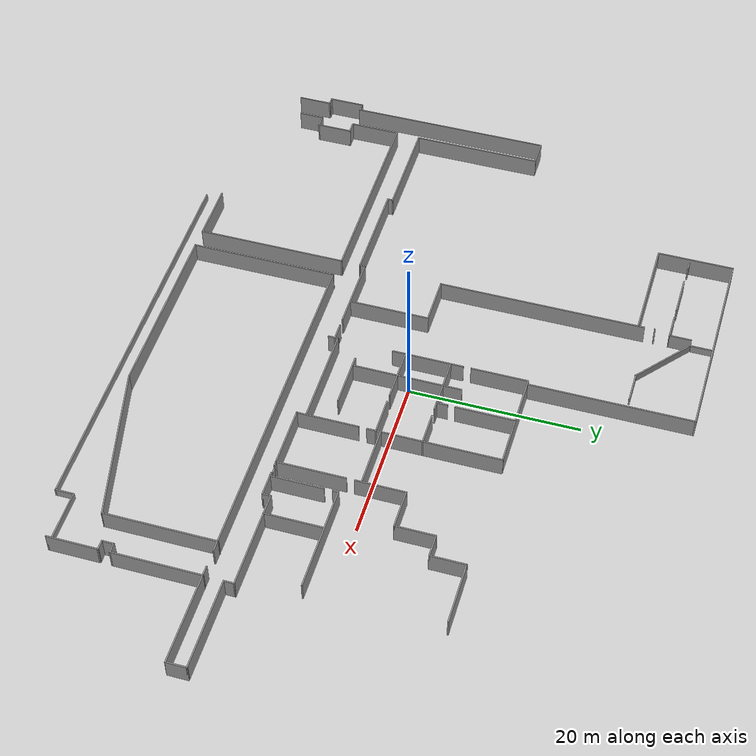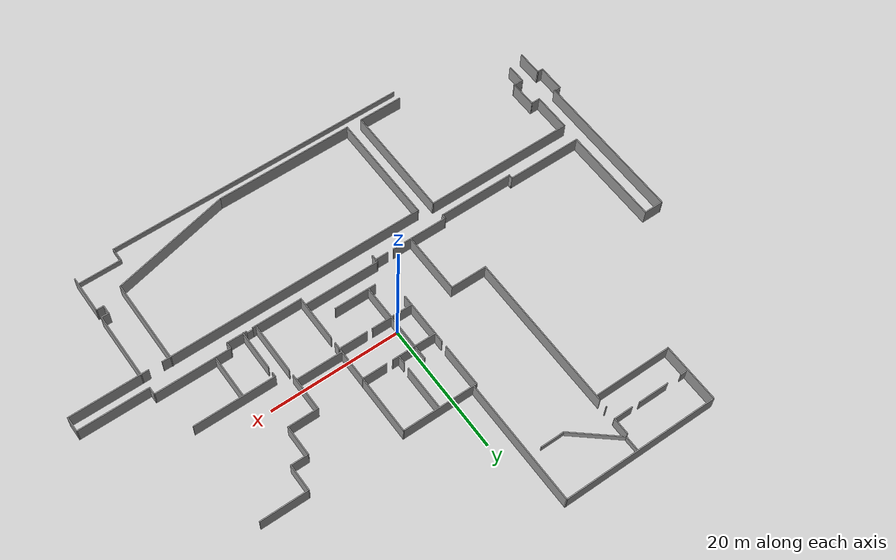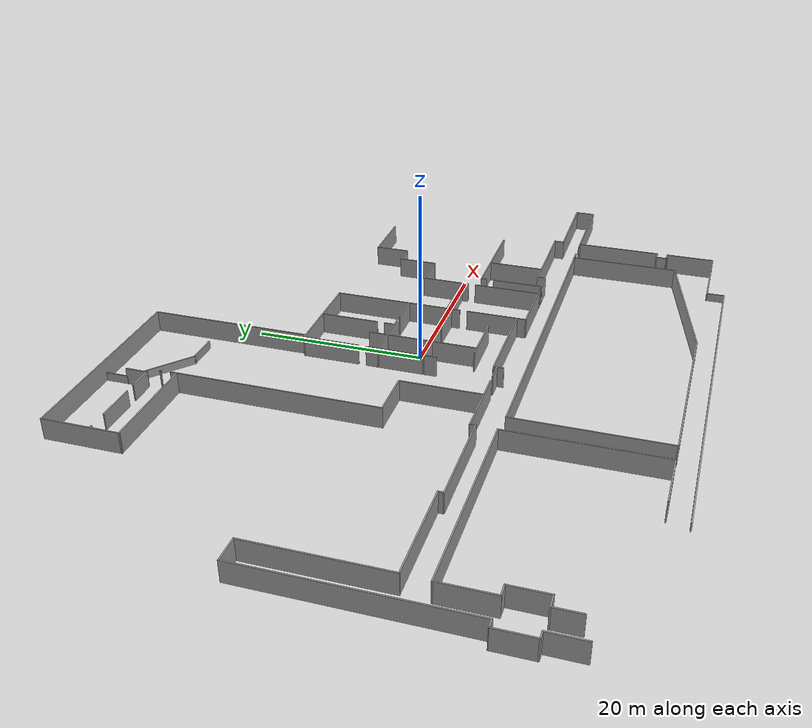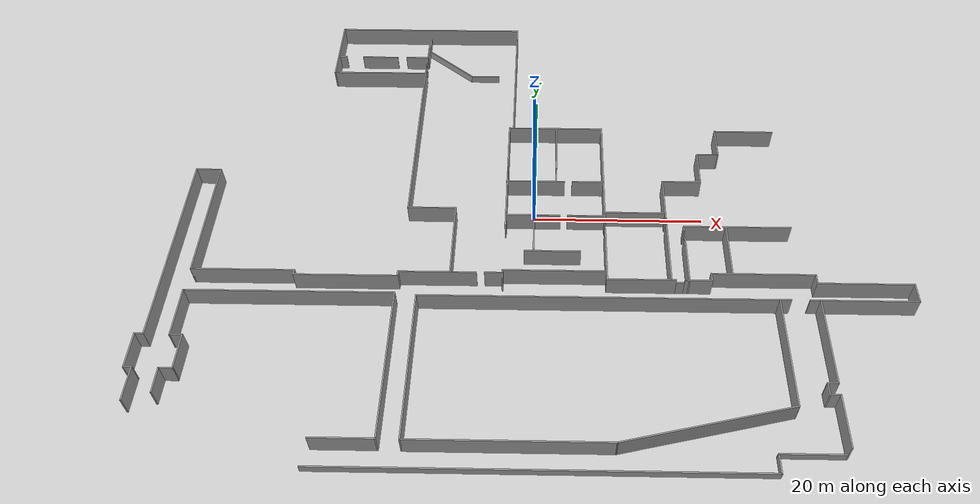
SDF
<sdf version="1.6">
 <model name="uia_2nd_floor">
  <pose>0.014578 -0.252924 0 0 -0 0</pose>
  <link name="Door_8">
   <collision name="Door_8_Collision">
    <geometry><box><size>0.9 0.17 2</size></box></geometry>
    <pose>0 0 1 0 -0 0</pose>
   </collision>
   <visual name="Door_8_Visual">
    <pose>0 0 1 0 -0 0</pose>
    <geometry><box><size>0.9 0.17 2</size></box></geometry>
    <material>
     <script><uri>file://media/materials/scripts/gazebo.material</uri><name>Gazebo/Grey</name></script>
    </material>
   </visual>
   <pose>16.387 -10.3215 0 0 -0 0</pose>
  </link>
  <link name="Wall_1">
   <collision name="Wall_1_Collision">
    <geometry><box><size>24.5 0.15 2.5</size></box></geometry>
    <pose>0 0 1.25 0 -0 0</pose>
   </collision>
   <visual name="Wall_1_Visual">
    <pose>0 0 1.25 0 -0 0</pose>
    <geometry><box><size>24.5 0.15 2.5</size></box></geometry>
    <material>
     <script><uri>file://media/materials/scripts/gazebo.material</uri><name>Gazebo/Grey</name></script>
     <ambient>1 1 1 1</ambient>
    </material>
    <meta><layer>0</layer></meta>
   </visual>
   <pose>-14.8598 12.0178 0 0 -0 -1.5708</pose>
  </link>
  <link name="Wall_100">
   <collision name="Wall_100_Collision">
    <geometry><box><size>10.5 0.15 2.5</size></box></geometry>
    <pose>0 0 1.25 0 -0 0</pose>
   </collision>
   <visual name="Wall_100_Visual">
    <pose>0 0 1.25 0 -0 0</pose>
    <geometry><box><size>10.5 0.15 2.5</size></box></geometry>
    <material>
     <script><uri>file://media/materials/scripts/gazebo.material</uri><name>Gazebo/Grey</name></script>
     <ambient>1 1 1 1</ambient>
    </material>
    <meta><layer>0</layer></meta>
   </visual>
   <pose>31.4237 -17.9685 0 0 -0 -1.5708</pose>
  </link>
  <link name="Wall_101">
   <collision name="Wall_101_Collision">
    <geometry><box><size>1.25 0.15 2.5</size></box></geometry>
    <pose>0 0 1.25 0 -0 0</pose>
   </collision>
   <visual name="Wall_101_Visual">
    <pose>0 0 1.25 0 -0 0</pose>
    <geometry><box><size>1.25 0.15 2.5</size></box></geometry>
    <material>
     <script><uri>file://media/materials/scripts/gazebo.material</uri><name>Gazebo/Grey</name></script>
     <ambient>1 1 1 1</ambient>
    </material>
    <meta><layer>0</layer></meta>
   </visual>
   <pose>30.8737 -23.1435 0 0 -0 3.14159</pose>
  </link>
  <link name="Wall_102">
   <collision name="Wall_102_Collision">
    <geometry><box><size>1.5 0.15 2.5</size></box></geometry>
    <pose>0 0 1.25 0 -0 0</pose>
   </collision>
   <visual name="Wall_102_Visual">
    <pose>0 0 1.25 0 -0 0</pose>
    <geometry><box><size>1.5 0.15 2.5</size></box></geometry>
    <material>
     <script><uri>file://media/materials/scripts/gazebo.material</uri><name>Gazebo/Grey</name></script>
     <ambient>1 1 1 1</ambient>
    </material>
    <meta><layer>0</layer></meta>
   </visual>
   <pose>30.3237 -23.8185 0 0 -0 -1.5708</pose>
  </link>
  <link name="Wall_103">
   <collision name="Wall_103_Collision">
    <geometry><box><size>1.25 0.15 2.5</size></box></geometry>
    <pose>0 0 1.25 0 -0 0</pose>
   </collision>
   <visual name="Wall_103_Visual">
    <pose>0 0 1.25 0 -0 0</pose>
    <geometry><box><size>1.25 0.15 2.5</size></box></geometry>
    <material>
     <script><uri>file://media/materials/scripts/gazebo.material</uri><name>Gazebo/Grey</name></script>
     <ambient>1 1 1 1</ambient>
    </material>
    <meta><layer>0</layer></meta>
   </visual>
   <pose>30.8737 -24.4935 0 0 -0 0</pose>
  </link>
  <link name="Wall_104">
   <collision name="Wall_104_Collision">
    <geometry><box><size>6 0.15 2.5</size></box></geometry>
    <pose>0 0 1.25 0 -0 0</pose>
   </collision>
   <visual name="Wall_104_Visual">
    <pose>0 0 1.25 0 -0 0</pose>
    <geometry><box><size>6 0.15 2.5</size></box></geometry>
    <material>
     <script><uri>file://media/materials/scripts/gazebo.material</uri><name>Gazebo/Grey</name></script>
     <ambient>1 1 1 1</ambient>
    </material>
    <meta><layer>0</layer></meta>
   </visual>
   <pose>31.4235 -27.4183 0 0 -0 -1.57084</pose>
  </link>
  <link name="Wall_106">
   <collision name="Wall_106_Collision">
    <geometry><box><size>7 0.15 1</size></box></geometry>
    <pose>0 0 0.5 0 -0 0</pose>
   </collision>
   <visual name="Wall_106_Visual">
    <pose>0 0 0.5 0 -0 0</pose>
    <geometry><box><size>7 0.15 1</size></box></geometry>
    <material>
     <script><uri>file://media/materials/scripts/gazebo.material</uri><name>Gazebo/Grey</name></script>
     <ambient>1 1 1 1</ambient>
    </material>
    <meta><layer>0</layer></meta>
   </visual>
   <pose>27.9984 -30.3431 0 0 -0 3.14159</pose>
  </link>
  <link name="Wall_108">
   <collision name="Wall_108_Collision">
    <geometry><box><size>2.25 0.15 1</size></box></geometry>
    <pose>0 0 0.5 0 -0 0</pose>
   </collision>
   <visual name="Wall_108_Visual">
    <pose>0 0 0.5 0 -0 0</pose>
    <geometry><box><size>2.25 0.15 1</size></box></geometry>
    <material>
     <script><uri>file://media/materials/scripts/gazebo.material</uri><name>Gazebo/Grey</name></script>
     <ambient>1 1 1 1</ambient>
    </material>
    <meta><layer>0</layer></meta>
   </visual>
   <pose>24.5734 -31.3931 0 0 -0 -1.5708</pose>
  </link>
  <link name="Wall_11">
   <collision name="Wall_11_Collision">
    <geometry><box><size>1 0.15 2</size></box></geometry>
    <pose>0 0 1 0 -0 0</pose>
   </collision>
   <visual name="Wall_11_Visual">
    <pose>0 0 1 0 -0 0</pose>
    <geometry><box><size>1 0.15 2</size></box></geometry>
    <material>
     <script><uri>file://media/materials/scripts/gazebo.material</uri><name>Gazebo/Grey</name></script>
     <ambient>1 1 1 1</ambient>
    </material>
    <meta><layer>0</layer></meta>
   </visual>
   <pose>-26.4416 27.2929 0 0 -0 3.14159</pose>
  </link>
  <link name="Wall_112">
   <collision name="Wall_112_Collision">
    <geometry><box><size>21.4992 0.15 2.5</size></box></geometry>
    <pose>0 0 1.25 0 -0 0</pose>
   </collision>
   <visual name="Wall_112_Visual">
    <pose>0 0 1.25 0 -0 0</pose>
    <geometry><box><size>21.4992 0.15 2.5</size></box></geometry>
    <material>
     <script><uri>file://media/materials/scripts/gazebo.material</uri><name>Gazebo/Grey</name></script>
     <ambient>1 1 1 1</ambient>
    </material>
    <meta><layer>0</layer></meta>
   </visual>
   <pose>-2.08908 -30.1571 0 0 -0 0</pose>
  </link>
  <link name="Wall_114">
   <collision name="Wall_114_Collision">
    <geometry><box><size>19.0467 0.15 2.5</size></box></geometry>
    <pose>0 0 1.25 0 -0 0</pose>
   </collision>
   <visual name="Wall_114_Visual">
    <pose>0 0 1.25 0 -0 0</pose>
    <geometry><box><size>19.0467 0.15 2.5</size></box></geometry>
    <material>
     <script><uri>file://media/materials/scripts/gazebo.material</uri><name>Gazebo/Grey</name></script>
     <ambient>1 1 1 1</ambient>
    </material>
    <meta><layer>0</layer></meta>
   </visual>
   <pose>17.7868 -28.01 0 0 -0 0.22924</pose>
  </link>
  <link name="Wall_116">
   <collision name="Wall_116_Collision">
    <geometry><box><size>17.5 0.15 2.5</size></box></geometry>
    <pose>0 0 1.25 0 -0 0</pose>
   </collision>
   <visual name="Wall_116_Visual">
    <pose>0 0 1.25 0 -0 0</pose>
    <geometry><box><size>17.5 0.15 2.5</size></box></geometry>
    <material>
     <script><uri>file://media/materials/scripts/gazebo.material</uri><name>Gazebo/Grey</name></script>
     <ambient>1 1 1 1</ambient>
    </material>
    <meta><layer>0</layer></meta>
   </visual>
   <pose>-12.7636 -21.4821 0 0 -0 1.5708</pose>
  </link>
  <link name="Wall_118">
   <collision name="Wall_118_Collision">
    <geometry><box><size>17.75 0.15 2.5</size></box></geometry>
    <pose>0 0 1.25 0 -0 0</pose>
   </collision>
   <visual name="Wall_118_Visual">
    <pose>0 0 1.25 0 -0 0</pose>
    <geometry><box><size>17.75 0.15 2.5</size></box></geometry>
    <material>
     <script><uri>file://media/materials/scripts/gazebo.material</uri><name>Gazebo/Grey</name></script>
     <ambient>1 1 1 1</ambient>
    </material>
    <meta><layer>0</layer></meta>
   </visual>
   <pose>-15.1487 -21.3153 0 0 -0 1.57081</pose>
  </link>
  <link name="Wall_119">
   <collision name="Wall_119_Collision">
    <geometry><box><size>23.4 0.15 2.5</size></box></geometry>
    <pose>0 0 1.25 0 -0 0</pose>
   </collision>
   <visual name="Wall_119_Visual">
    <pose>0 0 1.25 0 -0 0</pose>
    <geometry><box><size>23.4 0.15 2.5</size></box></geometry>
    <material>
     <script><uri>file://media/materials/scripts/gazebo.material</uri><name>Gazebo/Grey</name></script>
     <ambient>1 1 1 1</ambient>
    </material>
    <meta><layer>0</layer></meta>
   </visual>
   <pose>-26.7737 -12.5155 0 0 -0 3.14159</pose>
  </link>
  <link name="Wall_121">
   <collision name="Wall_121_Collision">
    <geometry><box><size>6.88066 0.15 2.5</size></box></geometry>
    <pose>0 0 1.25 0 -0 0</pose>
   </collision>
   <visual name="Wall_121_Visual">
    <pose>0 0 1.25 0 -0 0</pose>
    <geometry><box><size>6.88066 0.15 2.5</size></box></geometry>
    <material>
     <script><uri>file://media/materials/scripts/gazebo.material</uri><name>Gazebo/Grey</name></script>
     <ambient>1 1 1 1</ambient>
    </material>
    <meta><layer>0</layer></meta>
   </visual>
   <pose>-18.5141 -30.1151 0 0 -0 0</pose>
  </link>
  <link name="Wall_123">
   <collision name="Wall_123_Collision">
    <geometry><box><size>47.2393 0.15 1</size></box></geometry>
    <pose>0 0 0.5 0 -0 0</pose>
   </collision>
   <visual name="Wall_123_Visual">
    <pose>0 0 0.5 0 -0 0</pose>
    <geometry><box><size>47.2393 0.15 1</size></box></geometry>
    <material>
     <script><uri>file://media/materials/scripts/gazebo.material</uri><name>Gazebo/Grey</name></script>
     <ambient>1 1 1 1</ambient>
    </material>
    <meta><layer>0</layer></meta>
   </visual>
   <pose>1.02892 -32.4431 0 0 -0 0</pose>
  </link>
  <link name="Wall_125">
   <collision name="Wall_125_Collision">
    <geometry><box><size>6 0.15 2.5</size></box></geometry>
    <pose>0 0 1.25 0 -0 0</pose>
   </collision>
   <visual name="Wall_125_Visual">
    <pose>0 0 1.25 0 -0 0</pose>
    <geometry><box><size>6 0.15 2.5</size></box></geometry>
    <material>
     <script><uri>file://media/materials/scripts/gazebo.material</uri><name>Gazebo/Grey</name></script>
     <ambient>1 1 1 1</ambient>
    </material>
    <meta><layer>0</layer></meta>
   </visual>
   <pose>-38.3987 -15.4405 0 0 -0 -1.5708</pose>
  </link>
  <link name="Wall_126">
   <collision name="Wall_126_Collision">
    <geometry><box><size>1.5 0.15 2.5</size></box></geometry>
    <pose>0 0 1.25 0 -0 0</pose>
   </collision>
   <visual name="Wall_126_Visual">
    <pose>0 0 1.25 0 -0 0</pose>
    <geometry><box><size>1.5 0.15 2.5</size></box></geometry>
    <material>
     <script><uri>file://media/materials/scripts/gazebo.material</uri><name>Gazebo/Grey</name></script>
     <ambient>1 1 1 1</ambient>
    </material>
    <meta><layer>0</layer></meta>
   </visual>
   <pose>-37.7237 -18.3655 0 0 -0 0</pose>
  </link>
  <link name="Wall_128">
   <collision name="Wall_128_Collision">
    <geometry><box><size>4.25 0.15 2.5</size></box></geometry>
    <pose>0 0 1.25 0 -0 0</pose>
   </collision>
   <visual name="Wall_128_Visual">
    <pose>0 0 1.25 0 -0 0</pose>
    <geometry><box><size>4.25 0.15 2.5</size></box></geometry>
    <material>
     <script><uri>file://media/materials/scripts/gazebo.material</uri><name>Gazebo/Grey</name></script>
     <ambient>1 1 1 1</ambient>
    </material>
    <meta><layer>0</layer></meta>
   </visual>
   <pose>-37.0487 -20.4155 0 0 -0 -1.5708</pose>
  </link>
  <link name="Wall_129">
   <collision name="Wall_129_Collision">
    <geometry><box><size>1.6 0.15 2.5</size></box></geometry>
    <pose>0 0 1.25 0 -0 0</pose>
   </collision>
   <visual name="Wall_129_Visual">
    <pose>0 0 1.25 0 -0 0</pose>
    <geometry><box><size>1.6 0.15 2.5</size></box></geometry>
    <material>
     <script><uri>file://media/materials/scripts/gazebo.material</uri><name>Gazebo/Grey</name></script>
     <ambient>1 1 1 1</ambient>
    </material>
    <meta><layer>0</layer></meta>
   </visual>
   <pose>-37.7737 -22.4655 0 0 -0 3.14159</pose>
  </link>
  <link name="Wall_13">
   <collision name="Wall_13_Collision">
    <geometry><box><size>4.75 0.15 2</size></box></geometry>
    <pose>0 0 1 0 -0 0</pose>
   </collision>
   <visual name="Wall_13_Visual">
    <pose>0 0 1 0 -0 0</pose>
    <geometry><box><size>4.75 0.15 2</size></box></geometry>
    <material>
     <script><uri>file://media/materials/scripts/gazebo.material</uri><name>Gazebo/Grey</name></script>
     <ambient>1 1 1 1</ambient>
    </material>
    <meta><layer>0</layer></meta>
   </visual>
   <pose>-21.3616 27.2469 0 0 -0 3.14159</pose>
  </link>
  <link name="Wall_131">
   <collision name="Wall_131_Collision">
    <geometry><box><size>3 0.15 2.5</size></box></geometry>
    <pose>0 0 1.25 0 -0 0</pose>
   </collision>
   <visual name="Wall_131_Visual">
    <pose>0 0 1.25 0 -0 0</pose>
    <geometry><box><size>3 0.15 2.5</size></box></geometry>
    <material>
     <script><uri>file://media/materials/scripts/gazebo.material</uri><name>Gazebo/Grey</name></script>
     <ambient>1 1 1 1</ambient>
    </material>
    <meta><layer>0</layer></meta>
   </visual>
   <pose>-38.4987 -23.8905 0 0 -0 -1.5708</pose>
  </link>
  <link name="Wall_133">
   <collision name="Wall_133_Collision">
    <geometry><box><size>4 0.15 2.5</size></box></geometry>
    <pose>0 0 1.25 0 -0 0</pose>
   </collision>
   <visual name="Wall_133_Visual">
    <pose>0 0 1.25 0 -0 0</pose>
    <geometry><box><size>4 0.15 2.5</size></box></geometry>
    <material>
     <script><uri>file://media/materials/scripts/gazebo.material</uri><name>Gazebo/Grey</name></script>
     <ambient>1 1 1 1</ambient>
    </material>
    <meta><layer>0</layer></meta>
   </visual>
   <pose>-41.3174 -24.3275 0 0 -0 1.5708</pose>
  </link>
  <link name="Wall_134">
   <collision name="Wall_134_Collision">
    <geometry><box><size>1 0.15 2.5</size></box></geometry>
    <pose>0 0 1.25 0 -0 0</pose>
   </collision>
   <visual name="Wall_134_Visual">
    <pose>0 0 1.25 0 -0 0</pose>
    <geometry><box><size>1 0.15 2.5</size></box></geometry>
    <material>
     <script><uri>file://media/materials/scripts/gazebo.material</uri><name>Gazebo/Grey</name></script>
     <ambient>1 1 1 1</ambient>
    </material>
    <meta><layer>0</layer></meta>
   </visual>
   <pose>-41.7424 -22.4025 0 0 -0 3.14159</pose>
  </link>
  <link name="Wall_135">
   <collision name="Wall_135_Collision">
    <geometry><box><size>4.25 0.15 2.5</size></box></geometry>
    <pose>0 0 1.25 0 -0 0</pose>
   </collision>
   <visual name="Wall_135_Visual">
    <pose>0 0 1.25 0 -0 0</pose>
    <geometry><box><size>4.25 0.15 2.5</size></box></geometry>
    <material>
     <script><uri>file://media/materials/scripts/gazebo.material</uri><name>Gazebo/Grey</name></script>
     <ambient>1 1 1 1</ambient>
    </material>
    <meta><layer>0</layer></meta>
   </visual>
   <pose>-42.1674 -20.3525 0 0 -0 1.5708</pose>
  </link>
  <link name="Wall_136">
   <collision name="Wall_136_Collision">
    <geometry><box><size>1.10281 0.15 2.5</size></box></geometry>
    <pose>0 0 1.25 0 -0 0</pose>
   </collision>
   <visual name="Wall_136_Visual">
    <pose>0 0 1.25 0 -0 0</pose>
    <geometry><box><size>1.10281 0.15 2.5</size></box></geometry>
    <material>
     <script><uri>file://media/materials/scripts/gazebo.material</uri><name>Gazebo/Grey</name></script>
     <ambient>1 1 1 1</ambient>
    </material>
    <meta><layer>0</layer></meta>
   </visual>
   <pose>-41.691 -18.3023 0 0 -0 0.000416</pose>
  </link>
  <link name="Wall_138">
   <collision name="Wall_138_Collision">
    <geometry><box><size>24 0.15 2.5</size></box></geometry>
    <pose>0 0 1.25 0 -0 0</pose>
   </collision>
   <visual name="Wall_138_Visual">
    <pose>0 0 1.25 0 -0 0</pose>
    <geometry><box><size>24 0.15 2.5</size></box></geometry>
    <material>
     <script><uri>file://media/materials/scripts/gazebo.material</uri><name>Gazebo/Grey</name></script>
     <ambient>1 1 1 1</ambient>
    </material>
    <meta><layer>0</layer></meta>
   </visual>
   <pose>-41.2146 -6.37708 0 0 -0 1.5708</pose>
  </link>
  <link name="Wall_140">
   <collision name="Wall_140_Collision">
    <geometry><box><size>3.1 0.15 2.5</size></box></geometry>
    <pose>0 0 1.25 0 -0 0</pose>
   </collision>
   <visual name="Wall_140_Visual">
    <pose>0 0 1.25 0 -0 0</pose>
    <geometry><box><size>3.1 0.15 2.5</size></box></geometry>
    <material>
     <script><uri>file://media/materials/scripts/gazebo.material</uri><name>Gazebo/Grey</name></script>
     <ambient>1 1 1 1</ambient>
    </material>
    <meta><layer>0</layer></meta>
   </visual>
   <pose>-39.7396 5.54792 0 0 -0 0</pose>
  </link>
  <link name="Wall_142">
   <collision name="Wall_142_Collision">
    <geometry><box><size>15.3 0.15 2.5</size></box></geometry>
    <pose>0 0 1.25 0 -0 0</pose>
   </collision>
   <visual name="Wall_142_Visual">
    <pose>0 0 1.25 0 -0 0</pose>
    <geometry><box><size>15.3 0.15 2.5</size></box></geometry>
    <material>
     <script><uri>file://media/materials/scripts/gazebo.material</uri><name>Gazebo/Grey</name></script>
     <ambient>1 1 1 1</ambient>
    </material>
    <meta><layer>0</layer></meta>
   </visual>
   <pose>-38.2646 -2.02708 0 0 -0 -1.5708</pose>
  </link>
  <link name="Wall_144">
   <collision name="Wall_144_Collision">
    <geometry><box><size>11.75 0.15 2.5</size></box></geometry>
    <pose>0 0 1.25 0 -0 0</pose>
   </collision>
   <visual name="Wall_144_Visual">
    <pose>0 0 1.25 0 -0 0</pose>
    <geometry><box><size>11.75 0.15 2.5</size></box></geometry>
    <material>
     <script><uri>file://media/materials/scripts/gazebo.material</uri><name>Gazebo/Grey</name></script>
     <ambient>1 1 1 1</ambient>
    </material>
    <meta><layer>0</layer></meta>
   </visual>
   <pose>-32.4646 -9.60208 0 0 -0 0</pose>
  </link>
  <link name="Wall_145">
   <collision name="Wall_145_Collision">
    <geometry><box><size>0.75 0.15 2.5</size></box></geometry>
    <pose>0 0 1.25 0 -0 0</pose>
   </collision>
   <visual name="Wall_145_Visual">
    <pose>0 0 1.25 0 -0 0</pose>
    <geometry><box><size>0.75 0.15 2.5</size></box></geometry>
    <material>
     <script><uri>file://media/materials/scripts/gazebo.material</uri><name>Gazebo/Grey</name></script>
     <ambient>1 1 1 1</ambient>
    </material>
    <meta><layer>0</layer></meta>
   </visual>
   <pose>-26.6646 -9.90208 0 0 -0 -1.5708</pose>
  </link>
  <link name="Wall_147">
   <collision name="Wall_147_Collision">
    <geometry><box><size>11.75 0.15 2.5</size></box></geometry>
    <pose>0 0 1.25 0 -0 0</pose>
   </collision>
   <visual name="Wall_147_Visual">
    <pose>0 0 1.25 0 -0 0</pose>
    <geometry><box><size>11.75 0.15 2.5</size></box></geometry>
    <material>
     <script><uri>file://media/materials/scripts/gazebo.material</uri><name>Gazebo/Grey</name></script>
     <ambient>1 1 1 1</ambient>
    </material>
    <meta><layer>0</layer></meta>
   </visual>
   <pose>-20.8646 -10.2021 0 0 -0 0</pose>
  </link>
  <link name="Wall_148">
   <collision name="Wall_148_Collision">
    <geometry><box><size>0.75 0.15 2.5</size></box></geometry>
    <pose>0 0 1.25 0 -0 0</pose>
   </collision>
   <visual name="Wall_148_Visual">
    <pose>0 0 1.25 0 -0 0</pose>
    <geometry><box><size>0.75 0.15 2.5</size></box></geometry>
    <material>
     <script><uri>file://media/materials/scripts/gazebo.material</uri><name>Gazebo/Grey</name></script>
     <ambient>1 1 1 1</ambient>
    </material>
    <meta><layer>0</layer></meta>
   </visual>
   <pose>-15.0646 -9.90208 0 0 -0 1.5708</pose>
  </link>
  <link name="Wall_149">
   <collision name="Wall_149_Collision">
    <geometry><box><size>8.85 0.15 2.5</size></box></geometry>
    <pose>0 0 1.25 0 -0 0</pose>
   </collision>
   <visual name="Wall_149_Visual">
    <pose>0 0 1.25 0 -0 0</pose>
    <geometry><box><size>8.85 0.15 2.5</size></box></geometry>
    <material>
     <script><uri>file://media/materials/scripts/gazebo.material</uri><name>Gazebo/Grey</name></script>
     <ambient>1 1 1 1</ambient>
    </material>
    <meta><layer>0</layer></meta>
   </visual>
   <pose>-10.7146 -9.60208 0 0 -0 0</pose>
  </link>
  <link name="Wall_15">
   <collision name="Wall_15_Collision">
    <geometry><box><size>3 0.15 2</size></box></geometry>
    <pose>0 0 1 0 -0 0</pose>
   </collision>
   <visual name="Wall_15_Visual">
    <pose>0 0 1 0 -0 0</pose>
    <geometry><box><size>3 0.15 2</size></box></geometry>
    <material>
     <script><uri>file://media/materials/scripts/gazebo.material</uri><name>Gazebo/Grey</name></script>
     <ambient>1 1 1 1</ambient>
    </material>
    <meta><layer>0</layer></meta>
   </visual>
   <pose>-16.3226 27.2239 0 0 -0 3.14159</pose>
  </link>
  <link name="Wall_151">
   <collision name="Wall_151_Collision">
    <geometry><box><size>2.1 0.15 2.5</size></box></geometry>
    <pose>0 0 1.25 0 -0 0</pose>
   </collision>
   <visual name="Wall_151_Visual">
    <pose>0 0 1.25 0 -0 0</pose>
    <geometry><box><size>2.1 0.15 2.5</size></box></geometry>
    <material>
     <script><uri>file://media/materials/scripts/gazebo.material</uri><name>Gazebo/Grey</name></script>
     <ambient>1 1 1 1</ambient>
    </material>
    <meta><layer>0</layer></meta>
   </visual>
   <pose>-4.3819 -9.59977 0 0 -0 0</pose>
  </link>
  <link name="Wall_153">
   <collision name="Wall_153_Collision">
    <geometry><box><size>1.25 0.15 2.5</size></box></geometry>
    <pose>0 0 1.25 0 -0 0</pose>
   </collision>
   <visual name="Wall_153_Visual">
    <pose>0 0 1.25 0 -0 0</pose>
    <geometry><box><size>1.25 0.15 2.5</size></box></geometry>
    <material>
     <script><uri>file://media/materials/scripts/gazebo.material</uri><name>Gazebo/Grey</name></script>
     <ambient>1 1 1 1</ambient>
    </material>
    <meta><layer>0</layer></meta>
   </visual>
   <pose>-3.40954 -9.77383 0 0 -0 -1.5708</pose>
  </link>
  <link name="Wall_155">
   <collision name="Wall_155_Collision">
    <geometry><box><size>11.75 0.15 2.5</size></box></geometry>
    <pose>0 0 1.25 0 -0 0</pose>
   </collision>
   <visual name="Wall_155_Visual">
    <pose>0 0 1.25 0 -0 0</pose>
    <geometry><box><size>11.75 0.15 2.5</size></box></geometry>
    <material>
     <script><uri>file://media/materials/scripts/gazebo.material</uri><name>Gazebo/Grey</name></script>
     <ambient>1 1 1 1</ambient>
    </material>
    <meta><layer>0</layer></meta>
   </visual>
   <pose>2.39046 -9.22383 0 0 -0 0</pose>
  </link>
  <link name="Wall_158">
   <collision name="Wall_158_Collision">
    <geometry><box><size>6.75 0.15 2.5</size></box></geometry>
    <pose>0 0 1.25 0 -0 0</pose>
   </collision>
   <visual name="Wall_158_Visual">
    <pose>0 0 1.25 0 -0 0</pose>
    <geometry><box><size>6.75 0.15 2.5</size></box></geometry>
    <material>
     <script><uri>file://media/materials/scripts/gazebo.material</uri><name>Gazebo/Grey</name></script>
     <ambient>1 1 1 1</ambient>
    </material>
    <meta><layer>0</layer></meta>
   </visual>
   <pose>22.2312 -6.02891 0 0 -0 1.5708</pose>
  </link>
  <link name="Wall_160">
   <collision name="Wall_160_Collision">
    <geometry><box><size>2.65704 0.15 2</size></box></geometry>
    <pose>0 0 1 0 -0 0</pose>
   </collision>
   <visual name="Wall_160_Visual">
    <pose>0 0 1 0 -0 0</pose>
    <geometry><box><size>2.65704 0.15 2</size></box></geometry>
    <material>
     <script><uri>file://media/materials/scripts/gazebo.material</uri><name>Gazebo/Grey</name></script>
     <ambient>1 1 1 1</ambient>
    </material>
    <meta><layer>0</layer></meta>
   </visual>
   <pose>-14.8906 28.4774 0 0 -0 1.56521</pose>
  </link>
  <link name="Wall_162">
   <collision name="Wall_162_Collision">
    <geometry><box><size>0.15 0.15 2.5</size></box></geometry>
    <pose>0 0 1.25 0 -0 0</pose>
   </collision>
   <visual name="Wall_162_Visual">
    <pose>0 0 1.25 0 -0 0</pose>
    <geometry><box><size>0.15 0.15 2.5</size></box></geometry>
    <material>
     <script><uri>file://media/materials/scripts/gazebo.material</uri><name>Gazebo/Grey</name></script>
     <ambient>1 1 1 1</ambient>
    </material>
    <meta><layer>0</layer></meta>
   </visual>
   <pose>-14.9006 25.4529 0 0 -0 0</pose>
  </link>
  <link name="Wall_17">
   <collision name="Wall_17_Collision">
    <geometry><box><size>2.75 0.15 1</size></box></geometry>
    <pose>0 0 0.5 0 -0 0</pose>
   </collision>
   <visual name="Wall_17_Visual">
    <pose>0 0 0.5 0 -0 0</pose>
    <geometry><box><size>2.75 0.15 1</size></box></geometry>
    <material>
     <script><uri>file://media/materials/scripts/gazebo.material</uri><name>Gazebo/Grey</name></script>
     <ambient>1 1 1 1</ambient>
    </material>
    <meta><layer>0</layer></meta>
   </visual>
   <pose>-14.8836 31.0309 0 0 -0 1.5708</pose>
  </link>
  <link name="Wall_19">
   <collision name="Wall_19_Collision">
    <geometry><box><size>3.75 0.15 1</size></box></geometry>
    <pose>0 0 0.5 0 -0 0</pose>
   </collision>
   <visual name="Wall_19_Visual">
    <pose>0 0 0.5 0 -0 0</pose>
    <geometry><box><size>3.75 0.15 1</size></box></geometry>
    <material>
     <script><uri>file://media/materials/scripts/gazebo.material</uri><name>Gazebo/Grey</name></script>
     <ambient>1 1 1 1</ambient>
    </material>
    <meta><layer>0</layer></meta>
   </visual>
   <pose>-6.98458 24.6219 0 0 -0 0</pose>
  </link>
  <link name="Wall_2">
   <collision name="Wall_2_Collision">
    <geometry><box><size>5.75 0.15 2.5</size></box></geometry>
    <pose>0 0 1.25 0 -0 0</pose>
   </collision>
   <visual name="Wall_2_Visual">
    <pose>0 0 1.25 0 -0 0</pose>
    <geometry><box><size>5.75 0.15 2.5</size></box></geometry>
    <material>
     <script><uri>file://media/materials/scripts/gazebo.material</uri><name>Gazebo/Grey</name></script>
     <ambient>1 1 1 1</ambient>
    </material>
    <meta><layer>0</layer></meta>
   </visual>
   <pose>-12.0598 -0.157209 0 0 -0 0</pose>
  </link>
  <link name="Wall_21">
   <collision name="Wall_21_Collision">
    <geometry><box><size>8.10611 0.15 1</size></box></geometry>
    <pose>0 0 0.5 0 -0 0</pose>
   </collision>
   <visual name="Wall_21_Visual">
    <pose>0 0 0.5 0 -0 0</pose>
    <geometry><box><size>8.10611 0.15 1</size></box></geometry>
    <material>
     <script><uri>file://media/materials/scripts/gazebo.material</uri><name>Gazebo/Grey</name></script>
     <ambient>1 1 1 1</ambient>
    </material>
    <meta><layer>0</layer></meta>
   </visual>
   <pose>-11.8341 27.1764 0 0 -0 -0.697297</pose>
  </link>
  <link name="Wall_23">
   <collision name="Wall_23_Collision">
    <geometry><box><size>19.3 0.15 2.5</size></box></geometry>
    <pose>0 0 1.25 0 -0 0</pose>
   </collision>
   <visual name="Wall_23_Visual">
    <pose>0 0 1.25 0 -0 0</pose>
    <geometry><box><size>19.3 0.15 2.5</size></box></geometry>
    <material>
     <script><uri>file://media/materials/scripts/gazebo.material</uri><name>Gazebo/Grey</name></script>
     <ambient>1 1 1 1</ambient>
    </material>
    <meta><layer>0</layer></meta>
   </visual>
   <pose>-2.82666 22.8681 0 0 -0 -1.5708</pose>
  </link>
  <link name="Wall_25">
   <collision name="Wall_25_Collision">
    <geometry><box><size>11.735 0.15 2.5</size></box></geometry>
    <pose>0 0 1.25 0 -0 0</pose>
   </collision>
   <visual name="Wall_25_Visual">
    <pose>0 0 1.25 0 -0 0</pose>
    <geometry><box><size>11.735 0.15 2.5</size></box></geometry>
    <material>
     <script><uri>file://media/materials/scripts/gazebo.material</uri><name>Gazebo/Grey</name></script>
     <ambient>1 1 1 1</ambient>
    </material>
    <meta><layer>0</layer></meta>
   </visual>
   <pose>2.47792 13.2669 0 0 -0 0</pose>
  </link>
  <link name="Wall_28">
   <collision name="Wall_28_Collision">
    <geometry><box><size>6.75 0.15 2.5</size></box></geometry>
    <pose>0 0 1.25 0 -0 0</pose>
   </collision>
   <visual name="Wall_28_Visual">
    <pose>0 0 1.25 0 -0 0</pose>
    <geometry><box><size>6.75 0.15 2.5</size></box></geometry>
    <material>
     <script><uri>file://media/materials/scripts/gazebo.material</uri><name>Gazebo/Grey</name></script>
     <ambient>1 1 1 1</ambient>
    </material>
    <meta><layer>0</layer></meta>
   </visual>
   <pose>-3.31458 9.96692 0 0 -0 -1.5708</pose>
  </link>
  <link name="Wall_3">
   <collision name="Wall_3_Collision">
    <geometry><box><size>9.5 0.15 2.5</size></box></geometry>
    <pose>0 0 1.25 0 -0 0</pose>
   </collision>
   <visual name="Wall_3_Visual">
    <pose>0 0 1.25 0 -0 0</pose>
    <geometry><box><size>9.5 0.15 2.5</size></box></geometry>
    <material>
     <script><uri>file://media/materials/scripts/gazebo.material</uri><name>Gazebo/Grey</name></script>
     <ambient>1 1 1 1</ambient>
    </material>
    <meta><layer>0</layer></meta>
   </visual>
   <pose>-9.25977 -4.83221 0 0 -0 -1.5708</pose>
  </link>
  <link name="Wall_30">
   <collision name="Wall_30_Collision">
    <geometry><box><size>8.4 0.15 2.5</size></box></geometry>
    <pose>0 0 1.25 0 -0 0</pose>
   </collision>
   <visual name="Wall_30_Visual">
    <pose>0 0 1.25 0 -0 0</pose>
    <geometry><box><size>8.4 0.15 2.5</size></box></geometry>
    <material>
     <script><uri>file://media/materials/scripts/gazebo.material</uri><name>Gazebo/Grey</name></script>
     <ambient>1 1 1 1</ambient>
    </material>
    <meta><layer>0</layer></meta>
   </visual>
   <pose>-3.31458 1.52592 0 0 -0 -1.5708</pose>
  </link>
  <link name="Wall_33">
   <collision name="Wall_33_Collision">
    <geometry><box><size>1.35 0.15 2.5</size></box></geometry>
    <pose>0 0 1.25 0 -0 0</pose>
   </collision>
   <visual name="Wall_33_Visual">
    <pose>0 0 1.25 0 -0 0</pose>
    <geometry><box><size>1.35 0.15 2.5</size></box></geometry>
    <material>
     <script><uri>file://media/materials/scripts/gazebo.material</uri><name>Gazebo/Grey</name></script>
     <ambient>1 1 1 1</ambient>
    </material>
    <meta><layer>0</layer></meta>
   </visual>
   <pose>2.57437 4.82597 0 0 -0 -1.5708</pose>
  </link>
  <link name="Wall_35">
   <collision name="Wall_35_Collision">
    <geometry><box><size>7 0.15 2.5</size></box></geometry>
    <pose>0 0 1.25 0 -0 0</pose>
   </collision>
   <visual name="Wall_35_Visual">
    <pose>0 0 1.25 0 -0 0</pose>
    <geometry><box><size>7 0.15 2.5</size></box></geometry>
    <material>
     <script><uri>file://media/materials/scripts/gazebo.material</uri><name>Gazebo/Grey</name></script>
     <ambient>1 1 1 1</ambient>
    </material>
    <meta><layer>0</layer></meta>
   </visual>
   <pose>0.092854 4.22241 0 0 -0 0</pose>
  </link>
  <link name="Wall_37">
   <collision name="Wall_37_Collision">
    <geometry><box><size>3.9 0.15 2.5</size></box></geometry>
    <pose>0 0 1.25 0 -0 0</pose>
   </collision>
   <visual name="Wall_37_Visual">
    <pose>0 0 1.25 0 -0 0</pose>
    <geometry><box><size>3.9 0.15 2.5</size></box></geometry>
    <material>
     <script><uri>file://media/materials/scripts/gazebo.material</uri><name>Gazebo/Grey</name></script>
     <ambient>1 1 1 1</ambient>
    </material>
    <meta><layer>0</layer></meta>
   </visual>
   <pose>6.41146 4.22241 0 0 -0 0</pose>
  </link>
  <link name="Wall_39">
   <collision name="Wall_39_Collision">
    <geometry><box><size>7 0.15 2.5</size></box></geometry>
    <pose>0 0 1.25 0 -0 0</pose>
   </collision>
   <visual name="Wall_39_Visual">
    <pose>0 0 1.25 0 -0 0</pose>
    <geometry><box><size>7 0.15 2.5</size></box></geometry>
    <material>
     <script><uri>file://media/materials/scripts/gazebo.material</uri><name>Gazebo/Grey</name></script>
     <ambient>1 1 1 1</ambient>
    </material>
    <meta><layer>0</layer></meta>
   </visual>
   <pose>2.60063 9.84055 0 0 -0 1.5708</pose>
  </link>
  <link name="Wall_42">
   <collision name="Wall_42_Collision">
    <geometry><box><size>15.55 0.15 2.5</size></box></geometry>
    <pose>0 0 1.25 0 -0 0</pose>
   </collision>
   <visual name="Wall_42_Visual">
    <pose>0 0 1.25 0 -0 0</pose>
    <geometry><box><size>15.55 0.15 2.5</size></box></geometry>
    <material>
     <script><uri>file://media/materials/scripts/gazebo.material</uri><name>Gazebo/Grey</name></script>
     <ambient>1 1 1 1</ambient>
    </material>
    <meta><layer>0</layer></meta>
   </visual>
   <pose>8.27042 5.56692 0 0 -0 -1.5708</pose>
  </link>
  <link name="Wall_44">
   <collision name="Wall_44_Collision">
    <geometry><box><size>4.5 0.15 2.5</size></box></geometry>
    <pose>0 0 1.25 0 -0 0</pose>
   </collision>
   <visual name="Wall_44_Visual">
    <pose>0 0 1.25 0 -0 0</pose>
    <geometry><box><size>4.5 0.15 2.5</size></box></geometry>
    <material>
     <script><uri>file://media/materials/scripts/gazebo.material</uri><name>Gazebo/Grey</name></script>
     <ambient>1 1 1 1</ambient>
    </material>
    <meta><layer>0</layer></meta>
   </visual>
   <pose>6.11715 -1.13348 0 0 -0 0</pose>
  </link>
  <link name="Wall_46">
   <collision name="Wall_46_Collision">
    <geometry><box><size>6.5 0.15 2.5</size></box></geometry>
    <pose>0 0 1.25 0 -0 0</pose>
   </collision>
   <visual name="Wall_46_Visual">
    <pose>0 0 1.25 0 -0 0</pose>
    <geometry><box><size>6.5 0.15 2.5</size></box></geometry>
    <material>
     <script><uri>file://media/materials/scripts/gazebo.material</uri><name>Gazebo/Grey</name></script>
     <ambient>1 1 1 1</ambient>
    </material>
    <meta><layer>0</layer></meta>
   </visual>
   <pose>-0.173499 -1.11819 0 0 -0 3.14159</pose>
  </link>
  <link name="Wall_48">
   <collision name="Wall_48_Collision">
    <geometry><box><size>6.5 0.15 2.5</size></box></geometry>
    <pose>0 0 1.25 0 -0 0</pose>
   </collision>
   <visual name="Wall_48_Visual">
    <pose>0 0 1.25 0 -0 0</pose>
    <geometry><box><size>6.5 0.15 2.5</size></box></geometry>
    <material>
     <script><uri>file://media/materials/scripts/gazebo.material</uri><name>Gazebo/Grey</name></script>
     <ambient>1 1 1 1</ambient>
    </material>
    <meta><layer>0</layer></meta>
   </visual>
   <pose>2.13675 -6.43548 0 0 -0 0</pose>
  </link>
  <link name="Wall_5">
   <collision name="Wall_5_Collision">
    <geometry><box><size>12.2 0.15 2.5</size></box></geometry>
    <pose>0 0 1.25 0 -0 0</pose>
   </collision>
   <visual name="Wall_5_Visual">
    <pose>0 0 1.25 0 -0 0</pose>
    <geometry><box><size>12.2 0.15 2.5</size></box></geometry>
    <material>
     <script><uri>file://media/materials/scripts/gazebo.material</uri><name>Gazebo/Grey</name></script>
     <ambient>1 1 1 1</ambient>
    </material>
    <meta><layer>0</layer></meta>
   </visual>
   <pose>-20.9016 23.493 0 0 -0 -3.14158</pose>
  </link>
  <link name="Wall_52">
   <collision name="Wall_52_Collision">
    <geometry><box><size>7.3 0.15 2.5</size></box></geometry>
    <pose>0 0 1.25 0 -0 0</pose>
   </collision>
   <visual name="Wall_52_Visual">
    <pose>0 0 1.25 0 -0 0</pose>
    <geometry><box><size>7.3 0.15 2.5</size></box></geometry>
    <material>
     <script><uri>file://media/materials/scripts/gazebo.material</uri><name>Gazebo/Grey</name></script>
     <ambient>1 1 1 1</ambient>
    </material>
    <meta><layer>0</layer></meta>
   </visual>
   <pose>8.25726 -6.73805 0 0 -0 -1.57075</pose>
  </link>
  <link name="Wall_54">
   <collision name="Wall_54_Collision">
    <geometry><box><size>7.75 0.15 2.5</size></box></geometry>
    <pose>0 0 1.25 0 -0 0</pose>
   </collision>
   <visual name="Wall_54_Visual">
    <pose>0 0 1.25 0 -0 0</pose>
    <geometry><box><size>7.75 0.15 2.5</size></box></geometry>
    <material>
     <script><uri>file://media/materials/scripts/gazebo.material</uri><name>Gazebo/Grey</name></script>
     <ambient>1 1 1 1</ambient>
    </material>
    <meta><layer>0</layer></meta>
   </visual>
   <pose>12.0574 -10.3131 0 0 -0 0</pose>
  </link>
  <link name="Wall_56">
   <collision name="Wall_56_Collision">
    <geometry><box><size>8.1 0.15 2.5</size></box></geometry>
    <pose>0 0 1.25 0 -0 0</pose>
   </collision>
   <visual name="Wall_56_Visual">
    <pose>0 0 1.25 0 -0 0</pose>
    <geometry><box><size>8.1 0.15 2.5</size></box></geometry>
    <material>
     <script><uri>file://media/materials/scripts/gazebo.material</uri><name>Gazebo/Grey</name></script>
     <ambient>1 1 1 1</ambient>
    </material>
    <meta><layer>0</layer></meta>
   </visual>
   <pose>15.3802 -6.31796 0 0 -0 1.5708</pose>
  </link>
  <link name="Wall_60">
   <collision name="Wall_60_Collision">
    <geometry><box><size>5.9 0.15 2.5</size></box></geometry>
    <pose>0 0 1.25 0 -0 0</pose>
   </collision>
   <visual name="Wall_60_Visual">
    <pose>0 0 1.25 0 -0 0</pose>
    <geometry><box><size>5.9 0.15 2.5</size></box></geometry>
    <material>
     <script><uri>file://media/materials/scripts/gazebo.material</uri><name>Gazebo/Grey</name></script>
     <ambient>1 1 1 1</ambient>
    </material>
    <meta><layer>0</layer></meta>
   </visual>
   <pose>15.3746 1.54234 0 0 -0 1.5708</pose>
  </link>
  <link name="Wall_62">
   <collision name="Wall_62_Collision">
    <geometry><box><size>7.25 0.15 2.5</size></box></geometry>
    <pose>0 0 1.25 0 -0 0</pose>
   </collision>
   <visual name="Wall_62_Visual">
    <pose>0 0 1.25 0 -0 0</pose>
    <geometry><box><size>7.25 0.15 2.5</size></box></geometry>
    <material>
     <script><uri>file://media/materials/scripts/gazebo.material</uri><name>Gazebo/Grey</name></script>
     <ambient>1 1 1 1</ambient>
    </material>
    <meta><layer>0</layer></meta>
   </visual>
   <pose>11.8221 -0.583625 0 0 -0 0</pose>
  </link>
  <link name="Wall_64">
   <collision name="Wall_64_Collision">
    <geometry><box><size>4.7 0.15 2.5</size></box></geometry>
    <pose>0 0 1.25 0 -0 0</pose>
   </collision>
   <visual name="Wall_64_Visual">
    <pose>0 0 1.25 0 -0 0</pose>
    <geometry><box><size>4.7 0.15 2.5</size></box></geometry>
    <material>
     <script><uri>file://media/materials/scripts/gazebo.material</uri><name>Gazebo/Grey</name></script>
     <ambient>1 1 1 1</ambient>
    </material>
    <meta><layer>0</layer></meta>
   </visual>
   <pose>17.6496 4.41734 0 0 -0 0</pose>
  </link>
  <link name="Wall_67">
   <collision name="Wall_67_Collision">
    <geometry><box><size>4.75 0.15 2.5</size></box></geometry>
    <pose>0 0 1.25 0 -0 0</pose>
   </collision>
   <visual name="Wall_67_Visual">
    <pose>0 0 1.25 0 -0 0</pose>
    <geometry><box><size>4.75 0.15 2.5</size></box></geometry>
    <material>
     <script><uri>file://media/materials/scripts/gazebo.material</uri><name>Gazebo/Grey</name></script>
     <ambient>1 1 1 1</ambient>
    </material>
    <meta><layer>0</layer></meta>
   </visual>
   <pose>19.9246 6.71734 0 0 -0 1.5708</pose>
  </link>
  <link name="Wall_68">
   <collision name="Wall_68_Collision">
    <geometry><box><size>2.75 0.15 2.5</size></box></geometry>
    <pose>0 0 1.25 0 -0 0</pose>
   </collision>
   <visual name="Wall_68_Visual">
    <pose>0 0 1.25 0 -0 0</pose>
    <geometry><box><size>2.75 0.15 2.5</size></box></geometry>
    <material>
     <script><uri>file://media/materials/scripts/gazebo.material</uri><name>Gazebo/Grey</name></script>
     <ambient>1 1 1 1</ambient>
    </material>
    <meta><layer>0</layer></meta>
   </visual>
   <pose>21.2246 9.01734 0 0 -0 0</pose>
  </link>
  <link name="Wall_7">
   <collision name="Wall_7_Collision">
    <geometry><box><size>9.1 0.15 2.5</size></box></geometry>
    <pose>0 0 1.25 0 -0 0</pose>
   </collision>
   <visual name="Wall_7_Visual">
    <pose>0 0 1.25 0 -0 0</pose>
    <geometry><box><size>9.1 0.15 2.5</size></box></geometry>
    <material>
     <script><uri>file://media/materials/scripts/gazebo.material</uri><name>Gazebo/Grey</name></script>
     <ambient>1 1 1 1</ambient>
    </material>
    <meta><layer>0</layer></meta>
   </visual>
   <pose>-26.9266 27.9679 0 0 -0 1.5708</pose>
  </link>
  <link name="Wall_70">
   <collision name="Wall_70_Collision">
    <geometry><box><size>4.2 0.15 2.5</size></box></geometry>
    <pose>0 0 1.25 0 -0 0</pose>
   </collision>
   <visual name="Wall_70_Visual">
    <pose>0 0 1.25 0 -0 0</pose>
    <geometry><box><size>4.2 0.15 2.5</size></box></geometry>
    <material>
     <script><uri>file://media/materials/scripts/gazebo.material</uri><name>Gazebo/Grey</name></script>
     <ambient>1 1 1 1</ambient>
    </material>
    <meta><layer>0</layer></meta>
   </visual>
   <pose>22.5246 11.0423 0 0 -0 1.5708</pose>
  </link>
  <link name="Wall_72">
   <collision name="Wall_72_Collision">
    <geometry><box><size>7.35 0.15 2.5</size></box></geometry>
    <pose>0 0 1.25 0 -0 0</pose>
   </collision>
   <visual name="Wall_72_Visual">
    <pose>0 0 1.25 0 -0 0</pose>
    <geometry><box><size>7.35 0.15 2.5</size></box></geometry>
    <material>
     <script><uri>file://media/materials/scripts/gazebo.material</uri><name>Gazebo/Grey</name></script>
     <ambient>1 1 1 1</ambient>
    </material>
    <meta><layer>0</layer></meta>
   </visual>
   <pose>26.1246 13.0673 0 0 -0 0</pose>
  </link>
  <link name="Wall_74">
   <collision name="Wall_74_Collision">
    <geometry><box><size>12.5 0.15 2.5</size></box></geometry>
    <pose>0 0 1.25 0 -0 0</pose>
   </collision>
   <visual name="Wall_74_Visual">
    <pose>0 0 1.25 0 -0 0</pose>
    <geometry><box><size>12.5 0.15 2.5</size></box></geometry>
    <material>
     <script><uri>file://media/materials/scripts/gazebo.material</uri><name>Gazebo/Grey</name></script>
     <ambient>1 1 1 1</ambient>
    </material>
    <meta><layer>0</layer></meta>
   </visual>
   <pose>23.5355 -2.57804 0 0 -0 6e-06</pose>
  </link>
  <link name="Wall_78">
   <collision name="Wall_78_Collision">
    <geometry><box><size>0.75 0.15 2.5</size></box></geometry>
    <pose>0 0 1.25 0 -0 0</pose>
   </collision>
   <visual name="Wall_78_Visual">
    <pose>0 0 1.25 0 -0 0</pose>
    <geometry><box><size>0.75 0.15 2.5</size></box></geometry>
    <material>
     <script><uri>file://media/materials/scripts/gazebo.material</uri><name>Gazebo/Grey</name></script>
     <ambient>1 1 1 1</ambient>
    </material>
    <meta><layer>0</layer></meta>
   </visual>
   <pose>17.3604 -2.87808 0 0 -0 -1.5708</pose>
  </link>
  <link name="Wall_81">
   <collision name="Wall_81_Collision">
    <geometry><box><size>6.25 0.15 2.5</size></box></geometry>
    <pose>0 0 1.25 0 -0 0</pose>
   </collision>
   <visual name="Wall_81_Visual">
    <pose>0 0 1.25 0 -0 0</pose>
    <geometry><box><size>6.25 0.15 2.5</size></box></geometry>
    <material>
     <script><uri>file://media/materials/scripts/gazebo.material</uri><name>Gazebo/Grey</name></script>
     <ambient>1 1 1 1</ambient>
    </material>
    <meta><layer>0</layer></meta>
   </visual>
   <pose>17.3604 -7.28108 0 0 -0 1.5708</pose>
  </link>
  <link name="Wall_83">
   <collision name="Wall_83_Collision">
    <geometry><box><size>3.1 0.15 2.5</size></box></geometry>
    <pose>0 0 1.25 0 -0 0</pose>
   </collision>
   <visual name="Wall_83_Visual">
    <pose>0 0 1.25 0 -0 0</pose>
    <geometry><box><size>3.1 0.15 2.5</size></box></geometry>
    <material>
     <script><uri>file://media/materials/scripts/gazebo.material</uri><name>Gazebo/Grey</name></script>
     <ambient>1 1 1 1</ambient>
    </material>
    <meta><layer>0</layer></meta>
   </visual>
   <pose>18.3924 -10.3131 0 0 -0 0</pose>
  </link>
  <link name="Wall_85">
   <collision name="Wall_85_Collision">
    <geometry><box><size>1.1 0.15 2.5</size></box></geometry>
    <pose>0 0 1.25 0 -0 0</pose>
   </collision>
   <visual name="Wall_85_Visual">
    <pose>0 0 1.25 0 -0 0</pose>
    <geometry><box><size>1.1 0.15 2.5</size></box></geometry>
    <material>
     <script><uri>file://media/materials/scripts/gazebo.material</uri><name>Gazebo/Grey</name></script>
     <ambient>1 1 1 1</ambient>
    </material>
    <meta><layer>0</layer></meta>
   </visual>
   <pose>19.8674 -9.83808 0 0 -0 1.5708</pose>
  </link>
  <link name="Wall_87">
   <collision name="Wall_87_Collision">
    <geometry><box><size>11.75 0.15 2.5</size></box></geometry>
    <pose>0 0 1.25 0 -0 0</pose>
   </collision>
   <visual name="Wall_87_Visual">
    <pose>0 0 1.25 0 -0 0</pose>
    <geometry><box><size>11.75 0.15 2.5</size></box></geometry>
    <material>
     <script><uri>file://media/materials/scripts/gazebo.material</uri><name>Gazebo/Grey</name></script>
     <ambient>1 1 1 1</ambient>
    </material>
    <meta><layer>0</layer></meta>
   </visual>
   <pose>25.6674 -9.36308 0 0 -0 0</pose>
  </link>
  <link name="Wall_88">
   <collision name="Wall_88_Collision">
    <geometry><box><size>1.3 0.15 2.5</size></box></geometry>
    <pose>0 0 1.25 0 -0 0</pose>
   </collision>
   <visual name="Wall_88_Visual">
    <pose>0 0 1.25 0 -0 0</pose>
    <geometry><box><size>1.3 0.15 2.5</size></box></geometry>
    <material>
     <script><uri>file://media/materials/scripts/gazebo.material</uri><name>Gazebo/Grey</name></script>
     <ambient>1 1 1 1</ambient>
    </material>
    <meta><layer>0</layer></meta>
   </visual>
   <pose>31.4674 -9.93808 0 0 -0 -1.5708</pose>
  </link>
  <link name="Wall_9">
   <collision name="Wall_9_Collision">
    <geometry><box><size>24.25 0.15 2.5</size></box></geometry>
    <pose>0 0 1.25 0 -0 0</pose>
   </collision>
   <visual name="Wall_9_Visual">
    <pose>0 0 1.25 0 -0 0</pose>
    <geometry><box><size>24.25 0.15 2.5</size></box></geometry>
    <material>
     <script><uri>file://media/materials/scripts/gazebo.material</uri><name>Gazebo/Grey</name></script>
     <ambient>1 1 1 1</ambient>
    </material>
    <meta><layer>0</layer></meta>
   </visual>
   <pose>-14.8766 32.443 0 0 -0 6e-06</pose>
  </link>
  <link name="Wall_90">
   <collision name="Wall_90_Collision">
    <geometry><box><size>10.85 0.15 2.5</size></box></geometry>
    <pose>0 0 1.25 0 -0 0</pose>
   </collision>
   <visual name="Wall_90_Visual">
    <pose>0 0 1.25 0 -0 0</pose>
    <geometry><box><size>10.85 0.15 2.5</size></box></geometry>
    <material>
     <script><uri>file://media/materials/scripts/gazebo.material</uri><name>Gazebo/Grey</name></script>
     <ambient>1 1 1 1</ambient>
    </material>
    <meta><layer>0</layer></meta>
   </visual>
   <pose>36.8174 -10.5131 0 0 -0 0</pose>
  </link>
  <link name="Wall_92">
   <collision name="Wall_92_Collision">
    <geometry><box><size>2.45 0.15 2.5</size></box></geometry>
    <pose>0 0 1.25 0 -0 0</pose>
   </collision>
   <visual name="Wall_92_Visual">
    <pose>0 0 1.25 0 -0 0</pose>
    <geometry><box><size>2.45 0.15 2.5</size></box></geometry>
    <material>
     <script><uri>file://media/materials/scripts/gazebo.material</uri><name>Gazebo/Grey</name></script>
     <ambient>1 1 1 1</ambient>
    </material>
    <meta><layer>0</layer></meta>
   </visual>
   <pose>42.1674 -11.6631 0 0 -0 -1.5708</pose>
  </link>
  <link name="Wall_94">
   <collision name="Wall_94_Collision">
    <geometry><box><size>12 0.15 2.5</size></box></geometry>
    <pose>0 0 1.25 0 -0 0</pose>
   </collision>
   <visual name="Wall_94_Visual">
    <pose>0 0 1.25 0 -0 0</pose>
    <geometry><box><size>12 0.15 2.5</size></box></geometry>
    <material>
     <script><uri>file://media/materials/scripts/gazebo.material</uri><name>Gazebo/Grey</name></script>
     <ambient>1 1 1 1</ambient>
    </material>
    <meta><layer>0</layer></meta>
   </visual>
   <pose>36.2424 -12.8131 0 0 -0 3.14159</pose>
  </link>
  <link name="Wall_96">
   <collision name="Wall_96_Collision">
    <geometry><box><size>41 0.15 2.5</size></box></geometry>
    <pose>0 0 1.25 0 -0 0</pose>
   </collision>
   <visual name="Wall_96_Visual">
    <pose>0 0 1.25 0 -0 0</pose>
    <geometry><box><size>41 0.15 2.5</size></box></geometry>
    <material>
     <script><uri>file://media/materials/scripts/gazebo.material</uri><name>Gazebo/Grey</name></script>
     <ambient>1 1 1 1</ambient>
    </material>
    <meta><layer>0</layer></meta>
   </visual>
   <pose>7.77842 -12.8131 0 0 -0 3.14159</pose>
  </link>
  <link name="Wall_98">
   <collision name="Wall_98_Collision">
    <geometry><box><size>13.25 0.15 2.5</size></box></geometry>
    <pose>0 0 1.25 0 -0 0</pose>
   </collision>
   <visual name="Wall_98_Visual">
    <pose>0 0 1.25 0 -0 0</pose>
    <geometry><box><size>13.25 0.15 2.5</size></box></geometry>
    <material>
     <script><uri>file://media/materials/scripts/gazebo.material</uri><name>Gazebo/Grey</name></script>
     <ambient>1 1 1 1</ambient>
    </material>
    <meta><layer>0</layer></meta>
   </visual>
   <pose>26.9881 -19.313 0 0 -0 -1.5708</pose>
  </link>
  <link name="Wall_99">
   <collision name="Wall_99_Collision">
    <geometry><box><size>12.9 0.15 2.5</size></box></geometry>
    <pose>0 0 1.25 0 -0 0</pose>
   </collision>
   <visual name="Wall_99_Visual">
    <pose>0 0 1.25 0 -0 0</pose>
    <geometry><box><size>12.9 0.15 2.5</size></box></geometry>
    <material>
     <script><uri>file://media/materials/scripts/gazebo.material</uri><name>Gazebo/Grey</name></script>
     <ambient>1 1 1 1</ambient>
    </material>
    <meta><layer>0</layer></meta>
   </visual>
   <pose>0 -0 0 0 -0 1.5708</pose>
  </link>
  <static>1</static>
 </model>
</sdf>
